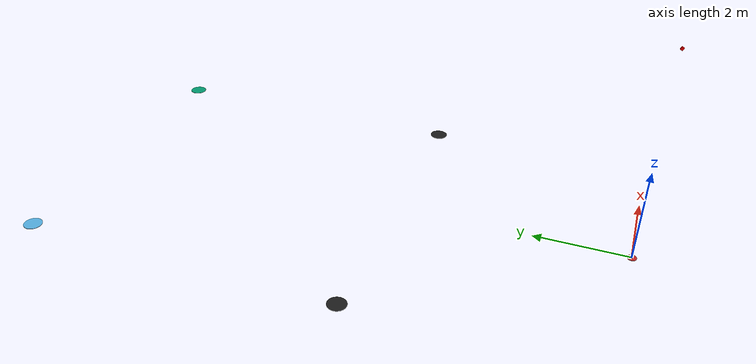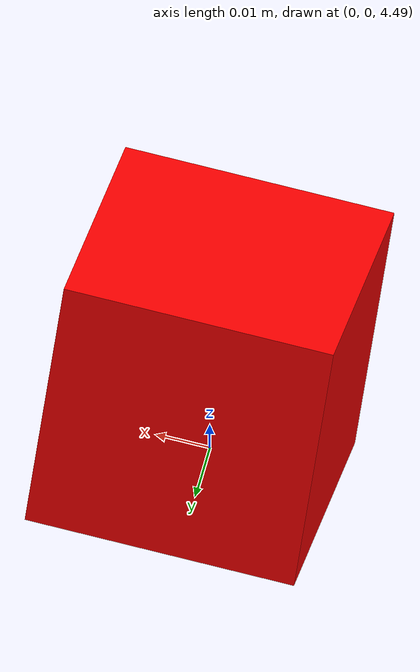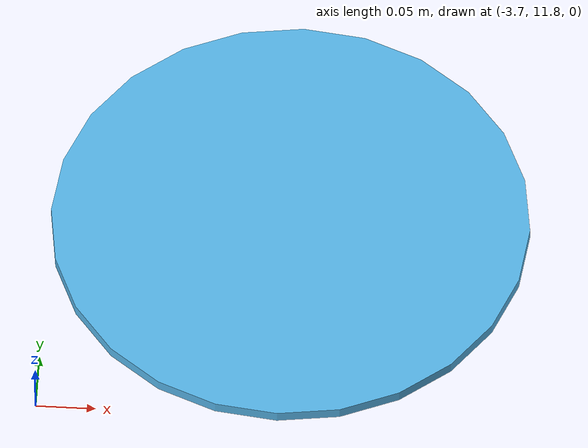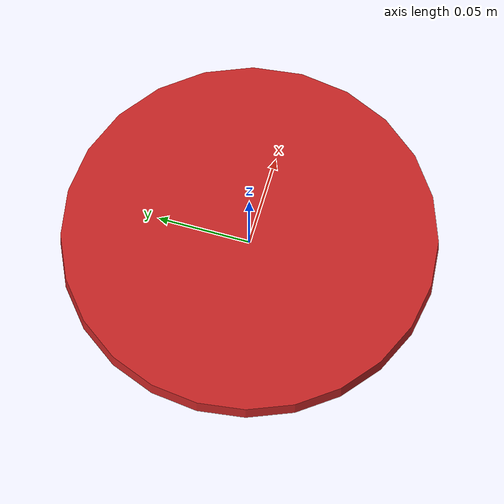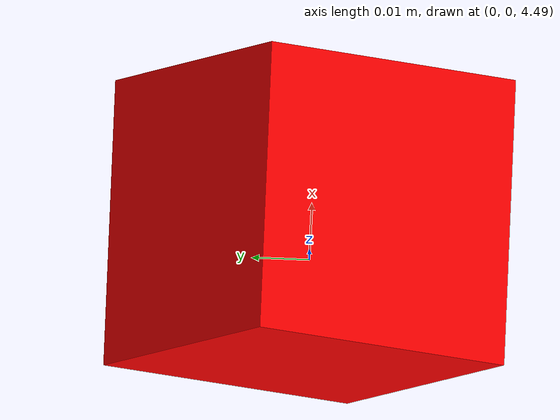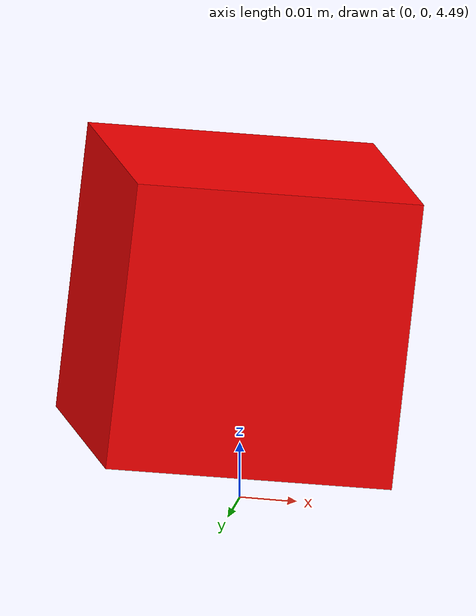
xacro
<?xml version="1.0"?>

 <robot xmlns:xacro="http://www.ros.org/wiki/xacro" name="camera">

	<!--base_link-->
	<link name = "base_link">
		<collision>
			<origin xyz = "0 0 0" rpy = "0 0 0"/>
			<geometry>
				<cylinder length = "0.01" radius = "0.1"/>
			</geometry>
		</collision>
		<visual>
			<origin xyz = "0 0 0" rpy = "0 0 0"/>
			<geometry>
				<cylinder length = "0.01" radius = "0.1"/>
			</geometry>
		</visual>

		<inertial>
       	  <mass value="100" />
       	  <origin xyz="0 0 0" rpy="0 0 0"/>
      	  <inertia ixx="0" ixy="0" ixz="0" iyy="0" iyz="0" izz="0" />
		</inertial>
	</link>

	<link name = "mark1_link">
		<collision>
			<origin xyz = "0 0 0" rpy = "0 0 0"/>
			<geometry>
				<cylinder length = "0.01" radius = "0.2"/>
			</geometry>
		</collision>
		<visual>
			<origin xyz = "0 0 0" rpy = "0 0 0"/>
			<geometry>
				<cylinder length = "0.01" radius = "0.2"/>
			</geometry>
		</visual>

		<inertial>
       	  <mass value="100" />
       	  <origin xyz="0 0 0" rpy="0 0 0"/>
      	  <inertia ixx="0" ixy="0" ixz="0" iyy="0" iyz="0" izz="0" />
		</inertial>
	</link>

	<link name = "mark2_link">
		<collision>
			<origin xyz = "0 0 0" rpy = "0 0 0"/>
			<geometry>
				<cylinder length = "0.01" radius = "0.2"/>
			</geometry>
		</collision>
		<visual>
			<origin xyz = "0 0 0" rpy = "0 0 0"/>
			<geometry>
				<cylinder length = "0.01" radius = "0.2"/>
			</geometry>
		</visual>

		<inertial>
       	  <mass value="100" />
       	  <origin xyz="0 0 0" rpy="0 0 0"/>
      	  <inertia ixx="0" ixy="0" ixz="0" iyy="0" iyz="0" izz="0" />
		</inertial>
	</link>

	<link name = "mark3_link">
		<collision>
			<origin xyz = "0 0 0" rpy = "0 0 0"/>
			<geometry>
				<cylinder length = "0.01" radius = "0.2"/>
			</geometry>
		</collision>
		<visual>
			<origin xyz = "0 0 0" rpy = "0 0 0"/>
			<geometry>
				<cylinder length = "0.01" radius = "0.2"/>
			</geometry>
		</visual>

		<inertial>
       	  <mass value="100" />
       	  <origin xyz="0 0 0" rpy="0 0 0"/>
      	  <inertia ixx="0" ixy="0" ixz="0" iyy="0" iyz="0" izz="0" />
		</inertial>
	</link>

	<link name = "mark4_link">
		<collision>
			<origin xyz = "0 0 0" rpy = "0 0 0"/>
			<geometry>
				<cylinder length = "0.01" radius = "0.2"/>
			</geometry>
		</collision>
		<visual>
			<origin xyz = "0 0 0" rpy = "0 0 0"/>
			<geometry>
				<cylinder length = "0.01" radius = "0.2"/>
			</geometry>
		</visual>

		<inertial>
       	  <mass value="100" />
       	  <origin xyz="0 0 0" rpy="0 0 0"/>
      	  <inertia ixx="0" ixy="0" ixz="0" iyy="0" iyz="0" izz="0" />
		</inertial>
	</link>

   <!-- Camera -->
   <link name="camera_link">
     <collision>
       <origin xyz="0 0 0" rpy="0 0 0"/>
       <geometry>
     <box size="0.05 0.05 0.05"/>
       </geometry>
     </collision>

     <visual>
       <origin xyz="0 0 0" rpy="0 0 0"/>
       <geometry>
     <box size="0.05 0.05 0.05"/>
       </geometry>
       <material name="red">
     <color rgba="1 0 0 1"/>
       </material>
     </visual>

     <inertial>
       <mass value="1e-5" />
       <origin xyz="0 0 0" rpy="0 0 0"/>
       <inertia ixx="1e-6" ixy="0" ixz="0" iyy="1e-6" iyz="0" izz="1e-6" />
     </inertial>
   </link>

	<joint name = "mark1_to_base" type = "fixed">
		<parent link = "base_link"/>
		<child link = "mark1_link"/>
		<origin xyz = "-3.5 12 0" rpy = "0 0 0"/>
	</joint>

	<joint name = "mark2_to_base" type = "fixed">
		<parent link = "base_link"/>
		<child link = "mark2_link"/>
		<origin xyz = "3.5 12 0" rpy = "0 0 0"/>
	</joint>

	<joint name = "mark3_to_base" type = "fixed">
		<parent link = "base_link"/>
		<child link = "mark3_link"/>
		<origin xyz = "-3.5 5 0" rpy = "0 0 0"/>
	</joint>

	<joint name = "mark4_to_base" type = "fixed">
		<parent link = "base_link"/>
		<child link = "mark4_link"/>
		<origin xyz = "3.5 5 0" rpy = "0 0 0"/>
	</joint>

	<joint name = "camera_to_base" type = "fixed">
		<parent link = "base_link"/>
		<child link = "camera_link"/>
		<origin xyz = "0 0 4.525" rpy = "0 1.0 1.57075"/>
	</joint>

  <gazebo reference="camera_link">
     <material>Gazebo/Red</material>
  </gazebo>

  <gazebo reference="mark3_link">
     <material>Gazebo/Black</material>
  </gazebo>
  <gazebo reference="mark4_link">
     <material>Gazebo/Black</material>
  </gazebo>

  <gazebo reference="base_link">
     <material>Gazebo/Red</material>
  </gazebo>

  <gazebo reference = "camera_link">
     <sensor type="camera" name="camera1">
       <update_rate>30.0</update_rate>
       <camera name="head">
         <horizontal_fov>1.3962634</horizontal_fov>
         <image>
           <width>800</width>
           <height>800</height>
           <format>R8G8B8</format>
         </image>
         <clip>
           <near>0.02</near>
           <far>300</far>
         </clip>
         <noise>
           <type>gaussian</type>
           <mean>0.0</mean>
            <stddev>0.007</stddev>
         </noise>
       </camera>

       <plugin name="camera_controller" filename="libgazebo_ros_camera.so">
         <alwaysOn>true</alwaysOn>
         <updateRate>0.0</updateRate>
         <cameraName>camera</cameraName>
         <imageTopicName>image_raw</imageTopicName>
         <cameraInfoTopicName>camera_info</cameraInfoTopicName>
         <frameName>camera_link</frameName>
         <hackBaseline>0.07</hackBaseline>
         <distortionK1>0.0</distortionK1>
         <distortionK2>0.0</distortionK2>
         <distortionK3>0.0</distortionK3>
         <distortionT1>0.0</distortionT1>
         <distortionT2>0.0</distortionT2>
       </plugin>
      </sensor>
	</gazebo>

</robot>
